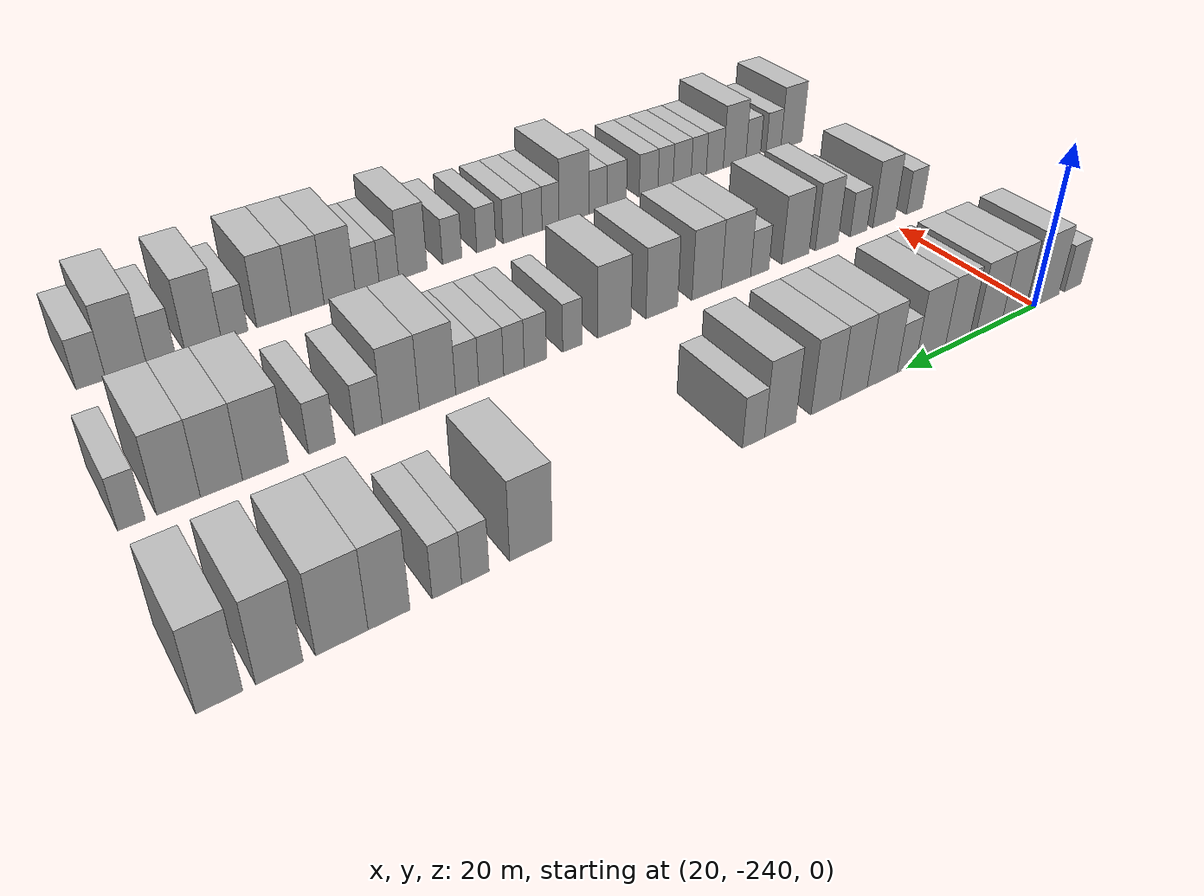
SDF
<sdf version="1.6">
 <world name="default">
  <model name="building_1">
   <static>1</static>
   <pose>25.0000 -246.5487 0 0.000000 0.000000 0.000000</pose>
   <link name="link">
    <pose>0 0 3.00 0 0 0</pose>
    <collision name="collision"><geometry><box><size>10.0000 2.9027 6.0000</size></box></geometry></collision>
    <visual name="visual">
     <cast_shadows>0</cast_shadows>
     <geometry><box><size>10.0000 2.9027 6.0000</size></box></geometry>
     <material>
      <script>
       <uri>model://HANNAS_wall/materials/scripts</uri>
       <uri>model://HANNAS_wall/materials/textures</uri>
       <name>vrc/HANNAS_wall</name>
      </script>
     </material>
    </visual>
   </link>
  </model>
  <model name="building_2">
   <static>1</static>
   <pose>25.0000 -242.2511 0 0.000000 0.000000 0.000000</pose>
   <link name="link">
    <pose>0 0 4.50 0 0 0</pose>
    <collision name="collision"><geometry><box><size>10.0000 3.6924 9.0000</size></box></geometry></collision>
    <visual name="visual">
     <cast_shadows>0</cast_shadows>
     <geometry><box><size>10.0000 3.6924 9.0000</size></box></geometry>
     <material>
      <script>
       <uri>model://HANNAS_wall/materials/scripts</uri>
       <uri>model://HANNAS_wall/materials/textures</uri>
       <name>vrc/HANNAS_wall</name>
      </script>
     </material>
    </visual>
   </link>
  </model>
  <model name="building_3">
   <static>1</static>
   <pose>25.0000 -236.4805 0 0.000000 0.000000 0.000000</pose>
   <link name="link">
    <pose>0 0 4.50 0 0 0</pose>
    <collision name="collision"><geometry><box><size>10.0000 3.8489 9.0000</size></box></geometry></collision>
    <visual name="visual">
     <cast_shadows>0</cast_shadows>
     <geometry><box><size>10.0000 3.8489 9.0000</size></box></geometry>
     <material>
      <script>
       <uri>model://HANNAS_wall/materials/scripts</uri>
       <uri>model://HANNAS_wall/materials/textures</uri>
       <name>vrc/HANNAS_wall</name>
      </script>
     </material>
    </visual>
   </link>
  </model>
  <model name="building_4">
   <static>1</static>
   <pose>25.0000 -232.4813 0 0.000000 0.000000 0.000000</pose>
   <link name="link">
    <pose>0 0 4.50 0 0 0</pose>
    <collision name="collision"><geometry><box><size>10.0000 4.1494 9.0000</size></box></geometry></collision>
    <visual name="visual">
     <cast_shadows>0</cast_shadows>
     <geometry><box><size>10.0000 4.1494 9.0000</size></box></geometry>
     <material>
      <script>
       <uri>model://HANNAS_wall/materials/scripts</uri>
       <uri>model://HANNAS_wall/materials/textures</uri>
       <name>vrc/HANNAS_wall</name>
      </script>
     </material>
    </visual>
   </link>
  </model>
  <model name="building_5">
   <static>1</static>
   <pose>25.0000 -227.5023 0 0.000000 0.000000 0.000000</pose>
   <link name="link">
    <pose>0 0 4.50 0 0 0</pose>
    <collision name="collision"><geometry><box><size>10.0000 3.8087 9.0000</size></box></geometry></collision>
    <visual name="visual">
     <cast_shadows>0</cast_shadows>
     <geometry><box><size>10.0000 3.8087 9.0000</size></box></geometry>
     <material>
      <script>
       <uri>model://HANNAS_wall/materials/scripts</uri>
       <uri>model://HANNAS_wall/materials/textures</uri>
       <name>vrc/HANNAS_wall</name>
      </script>
     </material>
    </visual>
   </link>
  </model>
  <model name="building_6">
   <static>1</static>
   <pose>25.0000 -223.4394 0 0.000000 0.000000 0.000000</pose>
   <link name="link">
    <pose>0 0 4.50 0 0 0</pose>
    <collision name="collision"><geometry><box><size>10.0000 4.3171 9.0000</size></box></geometry></collision>
    <visual name="visual">
     <cast_shadows>0</cast_shadows>
     <geometry><box><size>10.0000 4.3171 9.0000</size></box></geometry>
     <material>
      <script>
       <uri>model://HANNAS_wall/materials/scripts</uri>
       <uri>model://HANNAS_wall/materials/textures</uri>
       <name>vrc/HANNAS_wall</name>
      </script>
     </material>
    </visual>
   </link>
  </model>
  <model name="building_7">
   <static>1</static>
   <pose>25.0000 -219.9462 0 0.000000 0.000000 0.000000</pose>
   <link name="link">
    <pose>0 0 3.00 0 0 0</pose>
    <collision name="collision"><geometry><box><size>10.0000 2.6692 6.0000</size></box></geometry></collision>
    <visual name="visual">
     <cast_shadows>0</cast_shadows>
     <geometry><box><size>10.0000 2.6692 6.0000</size></box></geometry>
     <material>
      <script>
       <uri>model://HANNAS_wall/materials/scripts</uri>
       <uri>model://HANNAS_wall/materials/textures</uri>
       <name>vrc/HANNAS_wall</name>
      </script>
     </material>
    </visual>
   </link>
  </model>
  <model name="building_8">
   <static>1</static>
   <pose>25.0000 -216.4846 0 0.000000 0.000000 0.000000</pose>
   <link name="link">
    <pose>0 0 4.50 0 0 0</pose>
    <collision name="collision"><geometry><box><size>10.0000 4.2542 9.0000</size></box></geometry></collision>
    <visual name="visual">
     <cast_shadows>0</cast_shadows>
     <geometry><box><size>10.0000 4.2542 9.0000</size></box></geometry>
     <material>
      <script>
       <uri>model://HANNAS_wall/materials/scripts</uri>
       <uri>model://HANNAS_wall/materials/textures</uri>
       <name>vrc/HANNAS_wall</name>
      </script>
     </material>
    </visual>
   </link>
  </model>
  <model name="building_9">
   <static>1</static>
   <pose>25.0000 -212.4910 0 0.000000 0.000000 0.000000</pose>
   <link name="link">
    <pose>0 0 4.50 0 0 0</pose>
    <collision name="collision"><geometry><box><size>10.0000 3.7329 9.0000</size></box></geometry></collision>
    <visual name="visual">
     <cast_shadows>0</cast_shadows>
     <geometry><box><size>10.0000 3.7329 9.0000</size></box></geometry>
     <material>
      <script>
       <uri>model://HANNAS_wall/materials/scripts</uri>
       <uri>model://HANNAS_wall/materials/textures</uri>
       <name>vrc/HANNAS_wall</name>
      </script>
     </material>
    </visual>
   </link>
  </model>
  <model name="building_10">
   <static>1</static>
   <pose>25.0000 -208.6868 0 0.000000 0.000000 0.000000</pose>
   <link name="link">
    <pose>0 0 4.50 0 0 0</pose>
    <collision name="collision"><geometry><box><size>10.0000 3.8755 9.0000</size></box></geometry></collision>
    <visual name="visual">
     <cast_shadows>0</cast_shadows>
     <geometry><box><size>10.0000 3.8755 9.0000</size></box></geometry>
     <material>
      <script>
       <uri>model://HANNAS_wall/materials/scripts</uri>
       <uri>model://HANNAS_wall/materials/textures</uri>
       <name>vrc/HANNAS_wall</name>
      </script>
     </material>
    </visual>
   </link>
  </model>
  <model name="building_11">
   <static>1</static>
   <pose>25.0000 -202.7853 0 0.000000 0.000000 0.000000</pose>
   <link name="link">
    <pose>0 0 4.50 0 0 0</pose>
    <collision name="collision"><geometry><box><size>10.0000 3.9275 9.0000</size></box></geometry></collision>
    <visual name="visual">
     <cast_shadows>0</cast_shadows>
     <geometry><box><size>10.0000 3.9275 9.0000</size></box></geometry>
     <material>
      <script>
       <uri>model://HANNAS_wall/materials/scripts</uri>
       <uri>model://HANNAS_wall/materials/textures</uri>
       <name>vrc/HANNAS_wall</name>
      </script>
     </material>
    </visual>
   </link>
  </model>
  <model name="building_12">
   <static>1</static>
   <pose>25.0000 -199.4388 0 0.000000 0.000000 0.000000</pose>
   <link name="link">
    <pose>0 0 3.00 0 0 0</pose>
    <collision name="collision"><geometry><box><size>10.0000 2.7654 6.0000</size></box></geometry></collision>
    <visual name="visual">
     <cast_shadows>0</cast_shadows>
     <geometry><box><size>10.0000 2.7654 6.0000</size></box></geometry>
     <material>
      <script>
       <uri>model://HANNAS_wall/materials/scripts</uri>
       <uri>model://HANNAS_wall/materials/textures</uri>
       <name>vrc/HANNAS_wall</name>
      </script>
     </material>
    </visual>
   </link>
  </model>
  <model name="building_13">
   <static>1</static>
   <pose>25.0000 -174.6984 0 0.000000 0.000000 0.000000</pose>
   <link name="link">
    <pose>0 0 4.50 0 0 0</pose>
    <collision name="collision"><geometry><box><size>10.0000 4.2385 9.0000</size></box></geometry></collision>
    <visual name="visual">
     <cast_shadows>0</cast_shadows>
     <geometry><box><size>10.0000 4.2385 9.0000</size></box></geometry>
     <material>
      <script>
       <uri>model://HANNAS_wall/materials/scripts</uri>
       <uri>model://HANNAS_wall/materials/textures</uri>
       <name>vrc/HANNAS_wall</name>
      </script>
     </material>
    </visual>
   </link>
  </model>
  <model name="building_14">
   <static>1</static>
   <pose>25.0000 -169.2797 0 0.000000 0.000000 0.000000</pose>
   <link name="link">
    <pose>0 0 3.00 0 0 0</pose>
    <collision name="collision"><geometry><box><size>10.0000 2.5990 6.0000</size></box></geometry></collision>
    <visual name="visual">
     <cast_shadows>0</cast_shadows>
     <geometry><box><size>10.0000 2.5990 6.0000</size></box></geometry>
     <material>
      <script>
       <uri>model://HANNAS_wall/materials/scripts</uri>
       <uri>model://HANNAS_wall/materials/textures</uri>
       <name>vrc/HANNAS_wall</name>
      </script>
     </material>
    </visual>
   </link>
  </model>
  <model name="building_15">
   <static>1</static>
   <pose>25.0000 -166.6091 0 0.000000 0.000000 0.000000</pose>
   <link name="link">
    <pose>0 0 3.00 0 0 0</pose>
    <collision name="collision"><geometry><box><size>10.0000 2.7422 6.0000</size></box></geometry></collision>
    <visual name="visual">
     <cast_shadows>0</cast_shadows>
     <geometry><box><size>10.0000 2.7422 6.0000</size></box></geometry>
     <material>
      <script>
       <uri>model://HANNAS_wall/materials/scripts</uri>
       <uri>model://HANNAS_wall/materials/textures</uri>
       <name>vrc/HANNAS_wall</name>
      </script>
     </material>
    </visual>
   </link>
  </model>
  <model name="building_16">
   <static>1</static>
   <pose>25.0000 -161.3893 0 0.000000 0.000000 0.000000</pose>
   <link name="link">
    <pose>0 0 4.50 0 0 0</pose>
    <collision name="collision"><geometry><box><size>10.0000 3.6974 9.0000</size></box></geometry></collision>
    <visual name="visual">
     <cast_shadows>0</cast_shadows>
     <geometry><box><size>10.0000 3.6974 9.0000</size></box></geometry>
     <material>
      <script>
       <uri>model://HANNAS_wall/materials/scripts</uri>
       <uri>model://HANNAS_wall/materials/textures</uri>
       <name>vrc/HANNAS_wall</name>
      </script>
     </material>
    </visual>
   </link>
  </model>
  <model name="building_17">
   <static>1</static>
   <pose>25.0000 -157.3042 0 0.000000 0.000000 0.000000</pose>
   <link name="link">
    <pose>0 0 4.50 0 0 0</pose>
    <collision name="collision"><geometry><box><size>10.0000 4.4729 9.0000</size></box></geometry></collision>
    <visual name="visual">
     <cast_shadows>0</cast_shadows>
     <geometry><box><size>10.0000 4.4729 9.0000</size></box></geometry>
     <material>
      <script>
       <uri>model://HANNAS_wall/materials/scripts</uri>
       <uri>model://HANNAS_wall/materials/textures</uri>
       <name>vrc/HANNAS_wall</name>
      </script>
     </material>
    </visual>
   </link>
  </model>
  <model name="building_18">
   <static>1</static>
   <pose>25.0000 -152.1497 0 0.000000 0.000000 0.000000</pose>
   <link name="link">
    <pose>0 0 4.50 0 0 0</pose>
    <collision name="collision"><geometry><box><size>10.0000 3.8361 9.0000</size></box></geometry></collision>
    <visual name="visual">
     <cast_shadows>0</cast_shadows>
     <geometry><box><size>10.0000 3.8361 9.0000</size></box></geometry>
     <material>
      <script>
       <uri>model://HANNAS_wall/materials/scripts</uri>
       <uri>model://HANNAS_wall/materials/textures</uri>
       <name>vrc/HANNAS_wall</name>
      </script>
     </material>
    </visual>
   </link>
  </model>
  <model name="building_19">
   <static>1</static>
   <pose>25.0000 -147.4232 0 0.000000 0.000000 0.000000</pose>
   <link name="link">
    <pose>0 0 4.50 0 0 0</pose>
    <collision name="collision"><geometry><box><size>10.0000 3.6168 9.0000</size></box></geometry></collision>
    <visual name="visual">
     <cast_shadows>0</cast_shadows>
     <geometry><box><size>10.0000 3.6168 9.0000</size></box></geometry>
     <material>
      <script>
       <uri>model://HANNAS_wall/materials/scripts</uri>
       <uri>model://HANNAS_wall/materials/textures</uri>
       <name>vrc/HANNAS_wall</name>
      </script>
     </material>
    </visual>
   </link>
  </model>
  <model name="building_120">
   <static>1</static>
   <pose>47.0000 -244.5877 0 0.000000 0.000000 0.000000</pose>
   <link name="link">
    <pose>0 0 3.00 0 0 0</pose>
    <collision name="collision"><geometry><box><size>10.0000 2.8246 6.0000</size></box></geometry></collision>
    <visual name="visual">
     <cast_shadows>0</cast_shadows>
     <geometry><box><size>10.0000 2.8246 6.0000</size></box></geometry>
     <material>
      <script>
       <uri>model://HANNAS_wall/materials/scripts</uri>
       <uri>model://HANNAS_wall/materials/textures</uri>
       <name>vrc/HANNAS_wall</name>
      </script>
     </material>
    </visual>
   </link>
  </model>
  <model name="building_121">
   <static>1</static>
   <pose>47.0000 -239.2739 0 0.000000 0.000000 0.000000</pose>
   <link name="link">
    <pose>0 0 4.50 0 0 0</pose>
    <collision name="collision"><geometry><box><size>10.0000 3.8030 9.0000</size></box></geometry></collision>
    <visual name="visual">
     <cast_shadows>0</cast_shadows>
     <geometry><box><size>10.0000 3.8030 9.0000</size></box></geometry>
     <material>
      <script>
       <uri>model://HANNAS_wall/materials/scripts</uri>
       <uri>model://HANNAS_wall/materials/textures</uri>
       <name>vrc/HANNAS_wall</name>
      </script>
     </material>
    </visual>
   </link>
  </model>
  <model name="building_122">
   <static>1</static>
   <pose>47.0000 -234.9755 0 0.000000 0.000000 0.000000</pose>
   <link name="link">
    <pose>0 0 3.00 0 0 0</pose>
    <collision name="collision"><geometry><box><size>10.0000 2.7939 6.0000</size></box></geometry></collision>
    <visual name="visual">
     <cast_shadows>0</cast_shadows>
     <geometry><box><size>10.0000 2.7939 6.0000</size></box></geometry>
     <material>
      <script>
       <uri>model://HANNAS_wall/materials/scripts</uri>
       <uri>model://HANNAS_wall/materials/textures</uri>
       <name>vrc/HANNAS_wall</name>
      </script>
     </material>
    </visual>
   </link>
  </model>
  <model name="building_123">
   <static>1</static>
   <pose>47.0000 -229.7334 0 0.000000 0.000000 0.000000</pose>
   <link name="link">
    <pose>0 0 4.50 0 0 0</pose>
    <collision name="collision"><geometry><box><size>10.0000 3.6903 9.0000</size></box></geometry></collision>
    <visual name="visual">
     <cast_shadows>0</cast_shadows>
     <geometry><box><size>10.0000 3.6903 9.0000</size></box></geometry>
     <material>
      <script>
       <uri>model://HANNAS_wall/materials/scripts</uri>
       <uri>model://HANNAS_wall/materials/textures</uri>
       <name>vrc/HANNAS_wall</name>
      </script>
     </material>
    </visual>
   </link>
  </model>
  <model name="building_124">
   <static>1</static>
   <pose>47.0000 -224.7659 0 0.000000 0.000000 0.000000</pose>
   <link name="link">
    <pose>0 0 4.50 0 0 0</pose>
    <collision name="collision"><geometry><box><size>10.0000 4.2448 9.0000</size></box></geometry></collision>
    <visual name="visual">
     <cast_shadows>0</cast_shadows>
     <geometry><box><size>10.0000 4.2448 9.0000</size></box></geometry>
     <material>
      <script>
       <uri>model://HANNAS_wall/materials/scripts</uri>
       <uri>model://HANNAS_wall/materials/textures</uri>
       <name>vrc/HANNAS_wall</name>
      </script>
     </material>
    </visual>
   </link>
  </model>
  <model name="building_125">
   <static>1</static>
   <pose>47.0000 -219.2715 0 0.000000 0.000000 0.000000</pose>
   <link name="link">
    <pose>0 0 3.00 0 0 0</pose>
    <collision name="collision"><geometry><box><size>10.0000 2.7438 6.0000</size></box></geometry></collision>
    <visual name="visual">
     <cast_shadows>0</cast_shadows>
     <geometry><box><size>10.0000 2.7438 6.0000</size></box></geometry>
     <material>
      <script>
       <uri>model://HANNAS_wall/materials/scripts</uri>
       <uri>model://HANNAS_wall/materials/textures</uri>
       <name>vrc/HANNAS_wall</name>
      </script>
     </material>
    </visual>
   </link>
  </model>
  <model name="building_126">
   <static>1</static>
   <pose>47.0000 -215.7509 0 0.000000 0.000000 0.000000</pose>
   <link name="link">
    <pose>0 0 4.50 0 0 0</pose>
    <collision name="collision"><geometry><box><size>10.0000 4.2975 9.0000</size></box></geometry></collision>
    <visual name="visual">
     <cast_shadows>0</cast_shadows>
     <geometry><box><size>10.0000 4.2975 9.0000</size></box></geometry>
     <material>
      <script>
       <uri>model://HANNAS_wall/materials/scripts</uri>
       <uri>model://HANNAS_wall/materials/textures</uri>
       <name>vrc/HANNAS_wall</name>
      </script>
     </material>
    </visual>
   </link>
  </model>
  <model name="building_127">
   <static>1</static>
   <pose>47.0000 -211.4971 0 0.000000 0.000000 0.000000</pose>
   <link name="link">
    <pose>0 0 4.50 0 0 0</pose>
    <collision name="collision"><geometry><box><size>10.0000 4.2102 9.0000</size></box></geometry></collision>
    <visual name="visual">
     <cast_shadows>0</cast_shadows>
     <geometry><box><size>10.0000 4.2102 9.0000</size></box></geometry>
     <material>
      <script>
       <uri>model://HANNAS_wall/materials/scripts</uri>
       <uri>model://HANNAS_wall/materials/textures</uri>
       <name>vrc/HANNAS_wall</name>
      </script>
     </material>
    </visual>
   </link>
  </model>
  <model name="building_128">
   <static>1</static>
   <pose>47.0000 -205.2185 0 0.000000 0.000000 0.000000</pose>
   <link name="link">
    <pose>0 0 4.50 0 0 0</pose>
    <collision name="collision"><geometry><box><size>10.0000 4.3470 9.0000</size></box></geometry></collision>
    <visual name="visual">
     <cast_shadows>0</cast_shadows>
     <geometry><box><size>10.0000 4.3470 9.0000</size></box></geometry>
     <material>
      <script>
       <uri>model://HANNAS_wall/materials/scripts</uri>
       <uri>model://HANNAS_wall/materials/textures</uri>
       <name>vrc/HANNAS_wall</name>
      </script>
     </material>
    </visual>
   </link>
  </model>
  <model name="building_129">
   <static>1</static>
   <pose>47.0000 -198.8660 0 0.000000 0.000000 0.000000</pose>
   <link name="link">
    <pose>0 0 4.50 0 0 0</pose>
    <collision name="collision"><geometry><box><size>10.0000 4.3579 9.0000</size></box></geometry></collision>
    <visual name="visual">
     <cast_shadows>0</cast_shadows>
     <geometry><box><size>10.0000 4.3579 9.0000</size></box></geometry>
     <material>
      <script>
       <uri>model://HANNAS_wall/materials/scripts</uri>
       <uri>model://HANNAS_wall/materials/textures</uri>
       <name>vrc/HANNAS_wall</name>
      </script>
     </material>
    </visual>
   </link>
  </model>
  <model name="building_130">
   <static>1</static>
   <pose>47.0000 -193.4842 0 0.000000 0.000000 0.000000</pose>
   <link name="link">
    <pose>0 0 3.00 0 0 0</pose>
    <collision name="collision"><geometry><box><size>10.0000 2.4057 6.0000</size></box></geometry></collision>
    <visual name="visual">
     <cast_shadows>0</cast_shadows>
     <geometry><box><size>10.0000 2.4057 6.0000</size></box></geometry>
     <material>
      <script>
       <uri>model://HANNAS_wall/materials/scripts</uri>
       <uri>model://HANNAS_wall/materials/textures</uri>
       <name>vrc/HANNAS_wall</name>
      </script>
     </material>
    </visual>
   </link>
  </model>
  <model name="building_131">
   <static>1</static>
   <pose>47.0000 -188.9289 0 0.000000 0.000000 0.000000</pose>
   <link name="link">
    <pose>0 0 3.00 0 0 0</pose>
    <collision name="collision"><geometry><box><size>10.0000 2.7050 6.0000</size></box></geometry></collision>
    <visual name="visual">
     <cast_shadows>0</cast_shadows>
     <geometry><box><size>10.0000 2.7050 6.0000</size></box></geometry>
     <material>
      <script>
       <uri>model://HANNAS_wall/materials/scripts</uri>
       <uri>model://HANNAS_wall/materials/textures</uri>
       <name>vrc/HANNAS_wall</name>
      </script>
     </material>
    </visual>
   </link>
  </model>
  <model name="building_132">
   <static>1</static>
   <pose>47.0000 -186.3565 0 0.000000 0.000000 0.000000</pose>
   <link name="link">
    <pose>0 0 3.00 0 0 0</pose>
    <collision name="collision"><geometry><box><size>10.0000 2.4398 6.0000</size></box></geometry></collision>
    <visual name="visual">
     <cast_shadows>0</cast_shadows>
     <geometry><box><size>10.0000 2.4398 6.0000</size></box></geometry>
     <material>
      <script>
       <uri>model://HANNAS_wall/materials/scripts</uri>
       <uri>model://HANNAS_wall/materials/textures</uri>
       <name>vrc/HANNAS_wall</name>
      </script>
     </material>
    </visual>
   </link>
  </model>
  <model name="building_133">
   <static>1</static>
   <pose>47.0000 -183.6810 0 0.000000 0.000000 0.000000</pose>
   <link name="link">
    <pose>0 0 3.00 0 0 0</pose>
    <collision name="collision"><geometry><box><size>10.0000 2.9111 6.0000</size></box></geometry></collision>
    <visual name="visual">
     <cast_shadows>0</cast_shadows>
     <geometry><box><size>10.0000 2.9111 6.0000</size></box></geometry>
     <material>
      <script>
       <uri>model://HANNAS_wall/materials/scripts</uri>
       <uri>model://HANNAS_wall/materials/textures</uri>
       <name>vrc/HANNAS_wall</name>
      </script>
     </material>
    </visual>
   </link>
  </model>
  <model name="building_134">
   <static>1</static>
   <pose>47.0000 -180.9071 0 0.000000 0.000000 0.000000</pose>
   <link name="link">
    <pose>0 0 3.00 0 0 0</pose>
    <collision name="collision"><geometry><box><size>10.0000 2.6367 6.0000</size></box></geometry></collision>
    <visual name="visual">
     <cast_shadows>0</cast_shadows>
     <geometry><box><size>10.0000 2.6367 6.0000</size></box></geometry>
     <material>
      <script>
       <uri>model://HANNAS_wall/materials/scripts</uri>
       <uri>model://HANNAS_wall/materials/textures</uri>
       <name>vrc/HANNAS_wall</name>
      </script>
     </material>
    </visual>
   </link>
  </model>
  <model name="building_135">
   <static>1</static>
   <pose>47.0000 -177.5695 0 0.000000 0.000000 0.000000</pose>
   <link name="link">
    <pose>0 0 4.50 0 0 0</pose>
    <collision name="collision"><geometry><box><size>10.0000 4.0385 9.0000</size></box></geometry></collision>
    <visual name="visual">
     <cast_shadows>0</cast_shadows>
     <geometry><box><size>10.0000 4.0385 9.0000</size></box></geometry>
     <material>
      <script>
       <uri>model://HANNAS_wall/materials/scripts</uri>
       <uri>model://HANNAS_wall/materials/textures</uri>
       <name>vrc/HANNAS_wall</name>
      </script>
     </material>
    </visual>
   </link>
  </model>
  <model name="building_136">
   <static>1</static>
   <pose>47.0000 -173.5507 0 0.000000 0.000000 0.000000</pose>
   <link name="link">
    <pose>0 0 4.50 0 0 0</pose>
    <collision name="collision"><geometry><box><size>10.0000 3.9991 9.0000</size></box></geometry></collision>
    <visual name="visual">
     <cast_shadows>0</cast_shadows>
     <geometry><box><size>10.0000 3.9991 9.0000</size></box></geometry>
     <material>
      <script>
       <uri>model://HANNAS_wall/materials/scripts</uri>
       <uri>model://HANNAS_wall/materials/textures</uri>
       <name>vrc/HANNAS_wall</name>
      </script>
     </material>
    </visual>
   </link>
  </model>
  <model name="building_137">
   <static>1</static>
   <pose>47.0000 -170.1081 0 0.000000 0.000000 0.000000</pose>
   <link name="link">
    <pose>0 0 3.00 0 0 0</pose>
    <collision name="collision"><geometry><box><size>10.0000 2.8861 6.0000</size></box></geometry></collision>
    <visual name="visual">
     <cast_shadows>0</cast_shadows>
     <geometry><box><size>10.0000 2.8861 6.0000</size></box></geometry>
     <material>
      <script>
       <uri>model://HANNAS_wall/materials/scripts</uri>
       <uri>model://HANNAS_wall/materials/textures</uri>
       <name>vrc/HANNAS_wall</name>
      </script>
     </material>
    </visual>
   </link>
  </model>
  <model name="building_138">
   <static>1</static>
   <pose>47.0000 -165.3103 0 0.000000 0.000000 0.000000</pose>
   <link name="link">
    <pose>0 0 3.00 0 0 0</pose>
    <collision name="collision"><geometry><box><size>10.0000 2.7096 6.0000</size></box></geometry></collision>
    <visual name="visual">
     <cast_shadows>0</cast_shadows>
     <geometry><box><size>10.0000 2.7096 6.0000</size></box></geometry>
     <material>
      <script>
       <uri>model://HANNAS_wall/materials/scripts</uri>
       <uri>model://HANNAS_wall/materials/textures</uri>
       <name>vrc/HANNAS_wall</name>
      </script>
     </material>
    </visual>
   </link>
  </model>
  <model name="building_139">
   <static>1</static>
   <pose>47.0000 -159.7532 0 0.000000 0.000000 0.000000</pose>
   <link name="link">
    <pose>0 0 4.50 0 0 0</pose>
    <collision name="collision"><geometry><box><size>10.0000 4.4046 9.0000</size></box></geometry></collision>
    <visual name="visual">
     <cast_shadows>0</cast_shadows>
     <geometry><box><size>10.0000 4.4046 9.0000</size></box></geometry>
     <material>
      <script>
       <uri>model://HANNAS_wall/materials/scripts</uri>
       <uri>model://HANNAS_wall/materials/textures</uri>
       <name>vrc/HANNAS_wall</name>
      </script>
     </material>
    </visual>
   </link>
  </model>
  <model name="building_140">
   <static>1</static>
   <pose>47.0000 -155.5883 0 0.000000 0.000000 0.000000</pose>
   <link name="link">
    <pose>0 0 4.50 0 0 0</pose>
    <collision name="collision"><geometry><box><size>10.0000 3.9252 9.0000</size></box></geometry></collision>
    <visual name="visual">
     <cast_shadows>0</cast_shadows>
     <geometry><box><size>10.0000 3.9252 9.0000</size></box></geometry>
     <material>
      <script>
       <uri>model://HANNAS_wall/materials/scripts</uri>
       <uri>model://HANNAS_wall/materials/textures</uri>
       <name>vrc/HANNAS_wall</name>
      </script>
     </material>
    </visual>
   </link>
  </model>
  <model name="building_141">
   <static>1</static>
   <pose>47.0000 -151.6526 0 0.000000 0.000000 0.000000</pose>
   <link name="link">
    <pose>0 0 4.50 0 0 0</pose>
    <collision name="collision"><geometry><box><size>10.0000 3.9463 9.0000</size></box></geometry></collision>
    <visual name="visual">
     <cast_shadows>0</cast_shadows>
     <geometry><box><size>10.0000 3.9463 9.0000</size></box></geometry>
     <material>
      <script>
       <uri>model://HANNAS_wall/materials/scripts</uri>
       <uri>model://HANNAS_wall/materials/textures</uri>
       <name>vrc/HANNAS_wall</name>
      </script>
     </material>
    </visual>
   </link>
  </model>
  <model name="building_142">
   <static>1</static>
   <pose>47.0000 -147.4780 0 0.000000 0.000000 0.000000</pose>
   <link name="link">
    <pose>0 0 3.00 0 0 0</pose>
    <collision name="collision"><geometry><box><size>10.0000 2.4029 6.0000</size></box></geometry></collision>
    <visual name="visual">
     <cast_shadows>0</cast_shadows>
     <geometry><box><size>10.0000 2.4029 6.0000</size></box></geometry>
     <material>
      <script>
       <uri>model://HANNAS_wall/materials/scripts</uri>
       <uri>model://HANNAS_wall/materials/textures</uri>
       <name>vrc/HANNAS_wall</name>
      </script>
     </material>
    </visual>
   </link>
  </model>
  <model name="building_234">
   <static>1</static>
   <pose>69.0000 -244.0518 0 0.000000 0.000000 0.000000</pose>
   <link name="link">
    <pose>0 0 4.50 0 0 0</pose>
    <collision name="collision"><geometry><box><size>10.0000 3.8964 9.0000</size></box></geometry></collision>
    <visual name="visual">
     <cast_shadows>0</cast_shadows>
     <geometry><box><size>10.0000 3.8964 9.0000</size></box></geometry>
     <material>
      <script>
       <uri>model://HANNAS_wall/materials/scripts</uri>
       <uri>model://HANNAS_wall/materials/textures</uri>
       <name>vrc/HANNAS_wall</name>
      </script>
     </material>
    </visual>
   </link>
  </model>
  <model name="building_235">
   <static>1</static>
   <pose>69.0000 -240.7823 0 0.000000 0.000000 0.000000</pose>
   <link name="link">
    <pose>0 0 3.00 0 0 0</pose>
    <collision name="collision"><geometry><box><size>10.0000 2.6427 6.0000</size></box></geometry></collision>
    <visual name="visual">
     <cast_shadows>0</cast_shadows>
     <geometry><box><size>10.0000 2.6427 6.0000</size></box></geometry>
     <material>
      <script>
       <uri>model://HANNAS_wall/materials/scripts</uri>
       <uri>model://HANNAS_wall/materials/textures</uri>
       <name>vrc/HANNAS_wall</name>
      </script>
     </material>
    </visual>
   </link>
  </model>
  <model name="building_236">
   <static>1</static>
   <pose>69.0000 -237.1719 0 0.000000 0.000000 0.000000</pose>
   <link name="link">
    <pose>0 0 3.00 0 0 0</pose>
    <collision name="collision"><geometry><box><size>10.0000 2.5781 6.0000</size></box></geometry></collision>
    <visual name="visual">
     <cast_shadows>0</cast_shadows>
     <geometry><box><size>10.0000 2.5781 6.0000</size></box></geometry>
     <material>
      <script>
       <uri>model://HANNAS_wall/materials/scripts</uri>
       <uri>model://HANNAS_wall/materials/textures</uri>
       <name>vrc/HANNAS_wall</name>
      </script>
     </material>
    </visual>
   </link>
  </model>
  <model name="building_237">
   <static>1</static>
   <pose>69.0000 -233.9462 0 0.000000 0.000000 0.000000</pose>
   <link name="link">
    <pose>0 0 4.50 0 0 0</pose>
    <collision name="collision"><geometry><box><size>10.0000 3.8733 9.0000</size></box></geometry></collision>
    <visual name="visual">
     <cast_shadows>0</cast_shadows>
     <geometry><box><size>10.0000 3.8733 9.0000</size></box></geometry>
     <material>
      <script>
       <uri>model://HANNAS_wall/materials/scripts</uri>
       <uri>model://HANNAS_wall/materials/textures</uri>
       <name>vrc/HANNAS_wall</name>
      </script>
     </material>
    </visual>
   </link>
  </model>
  <model name="building_238">
   <static>1</static>
   <pose>69.0000 -230.5720 0 0.000000 0.000000 0.000000</pose>
   <link name="link">
    <pose>0 0 3.00 0 0 0</pose>
    <collision name="collision"><geometry><box><size>10.0000 2.8752 6.0000</size></box></geometry></collision>
    <visual name="visual">
     <cast_shadows>0</cast_shadows>
     <geometry><box><size>10.0000 2.8752 6.0000</size></box></geometry>
     <material>
      <script>
       <uri>model://HANNAS_wall/materials/scripts</uri>
       <uri>model://HANNAS_wall/materials/textures</uri>
       <name>vrc/HANNAS_wall</name>
      </script>
     </material>
    </visual>
   </link>
  </model>
  <model name="building_239">
   <static>1</static>
   <pose>69.0000 -227.8696 0 0.000000 0.000000 0.000000</pose>
   <link name="link">
    <pose>0 0 3.00 0 0 0</pose>
    <collision name="collision"><geometry><box><size>10.0000 2.5295 6.0000</size></box></geometry></collision>
    <visual name="visual">
     <cast_shadows>0</cast_shadows>
     <geometry><box><size>10.0000 2.5295 6.0000</size></box></geometry>
     <material>
      <script>
       <uri>model://HANNAS_wall/materials/scripts</uri>
       <uri>model://HANNAS_wall/materials/textures</uri>
       <name>vrc/HANNAS_wall</name>
      </script>
     </material>
    </visual>
   </link>
  </model>
  <model name="building_240">
   <static>1</static>
   <pose>69.0000 -225.1320 0 0.000000 0.000000 0.000000</pose>
   <link name="link">
    <pose>0 0 3.00 0 0 0</pose>
    <collision name="collision"><geometry><box><size>10.0000 2.9457 6.0000</size></box></geometry></collision>
    <visual name="visual">
     <cast_shadows>0</cast_shadows>
     <geometry><box><size>10.0000 2.9457 6.0000</size></box></geometry>
     <material>
      <script>
       <uri>model://HANNAS_wall/materials/scripts</uri>
       <uri>model://HANNAS_wall/materials/textures</uri>
       <name>vrc/HANNAS_wall</name>
      </script>
     </material>
    </visual>
   </link>
  </model>
  <model name="building_241">
   <static>1</static>
   <pose>69.0000 -222.4362 0 0.000000 0.000000 0.000000</pose>
   <link name="link">
    <pose>0 0 3.00 0 0 0</pose>
    <collision name="collision"><geometry><box><size>10.0000 2.4460 6.0000</size></box></geometry></collision>
    <visual name="visual">
     <cast_shadows>0</cast_shadows>
     <geometry><box><size>10.0000 2.4460 6.0000</size></box></geometry>
     <material>
      <script>
       <uri>model://HANNAS_wall/materials/scripts</uri>
       <uri>model://HANNAS_wall/materials/textures</uri>
       <name>vrc/HANNAS_wall</name>
      </script>
     </material>
    </visual>
   </link>
  </model>
  <model name="building_242">
   <static>1</static>
   <pose>69.0000 -219.7306 0 0.000000 0.000000 0.000000</pose>
   <link name="link">
    <pose>0 0 3.00 0 0 0</pose>
    <collision name="collision"><geometry><box><size>10.0000 2.9651 6.0000</size></box></geometry></collision>
    <visual name="visual">
     <cast_shadows>0</cast_shadows>
     <geometry><box><size>10.0000 2.9651 6.0000</size></box></geometry>
     <material>
      <script>
       <uri>model://HANNAS_wall/materials/scripts</uri>
       <uri>model://HANNAS_wall/materials/textures</uri>
       <name>vrc/HANNAS_wall</name>
      </script>
     </material>
    </visual>
   </link>
  </model>
  <model name="building_243">
   <static>1</static>
   <pose>69.0000 -214.7595 0 0.000000 0.000000 0.000000</pose>
   <link name="link">
    <pose>0 0 3.00 0 0 0</pose>
    <collision name="collision"><geometry><box><size>10.0000 2.9771 6.0000</size></box></geometry></collision>
    <visual name="visual">
     <cast_shadows>0</cast_shadows>
     <geometry><box><size>10.0000 2.9771 6.0000</size></box></geometry>
     <material>
      <script>
       <uri>model://HANNAS_wall/materials/scripts</uri>
       <uri>model://HANNAS_wall/materials/textures</uri>
       <name>vrc/HANNAS_wall</name>
      </script>
     </material>
    </visual>
   </link>
  </model>
  <model name="building_244">
   <static>1</static>
   <pose>69.0000 -211.9049 0 0.000000 0.000000 0.000000</pose>
   <link name="link">
    <pose>0 0 3.00 0 0 0</pose>
    <collision name="collision"><geometry><box><size>10.0000 2.7321 6.0000</size></box></geometry></collision>
    <visual name="visual">
     <cast_shadows>0</cast_shadows>
     <geometry><box><size>10.0000 2.7321 6.0000</size></box></geometry>
     <material>
      <script>
       <uri>model://HANNAS_wall/materials/scripts</uri>
       <uri>model://HANNAS_wall/materials/textures</uri>
       <name>vrc/HANNAS_wall</name>
      </script>
     </material>
    </visual>
   </link>
  </model>
  <model name="building_245">
   <static>1</static>
   <pose>69.0000 -208.3323 0 0.000000 0.000000 0.000000</pose>
   <link name="link">
    <pose>0 0 4.50 0 0 0</pose>
    <collision name="collision"><geometry><box><size>10.0000 4.4131 9.0000</size></box></geometry></collision>
    <visual name="visual">
     <cast_shadows>0</cast_shadows>
     <geometry><box><size>10.0000 4.4131 9.0000</size></box></geometry>
     <material>
      <script>
       <uri>model://HANNAS_wall/materials/scripts</uri>
       <uri>model://HANNAS_wall/materials/textures</uri>
       <name>vrc/HANNAS_wall</name>
      </script>
     </material>
    </visual>
   </link>
  </model>
  <model name="building_246">
   <static>1</static>
   <pose>69.0000 -204.9012 0 0.000000 0.000000 0.000000</pose>
   <link name="link">
    <pose>0 0 3.00 0 0 0</pose>
    <collision name="collision"><geometry><box><size>10.0000 2.4491 6.0000</size></box></geometry></collision>
    <visual name="visual">
     <cast_shadows>0</cast_shadows>
     <geometry><box><size>10.0000 2.4491 6.0000</size></box></geometry>
     <material>
      <script>
       <uri>model://HANNAS_wall/materials/scripts</uri>
       <uri>model://HANNAS_wall/materials/textures</uri>
       <name>vrc/HANNAS_wall</name>
      </script>
     </material>
    </visual>
   </link>
  </model>
  <model name="building_247">
   <static>1</static>
   <pose>69.0000 -202.3033 0 0.000000 0.000000 0.000000</pose>
   <link name="link">
    <pose>0 0 3.00 0 0 0</pose>
    <collision name="collision"><geometry><box><size>10.0000 2.7466 6.0000</size></box></geometry></collision>
    <visual name="visual">
     <cast_shadows>0</cast_shadows>
     <geometry><box><size>10.0000 2.7466 6.0000</size></box></geometry>
     <material>
      <script>
       <uri>model://HANNAS_wall/materials/scripts</uri>
       <uri>model://HANNAS_wall/materials/textures</uri>
       <name>vrc/HANNAS_wall</name>
      </script>
     </material>
    </visual>
   </link>
  </model>
  <model name="building_248">
   <static>1</static>
   <pose>69.0000 -199.5465 0 0.000000 0.000000 0.000000</pose>
   <link name="link">
    <pose>0 0 3.00 0 0 0</pose>
    <collision name="collision"><geometry><box><size>10.0000 2.7670 6.0000</size></box></geometry></collision>
    <visual name="visual">
     <cast_shadows>0</cast_shadows>
     <geometry><box><size>10.0000 2.7670 6.0000</size></box></geometry>
     <material>
      <script>
       <uri>model://HANNAS_wall/materials/scripts</uri>
       <uri>model://HANNAS_wall/materials/textures</uri>
       <name>vrc/HANNAS_wall</name>
      </script>
     </material>
    </visual>
   </link>
  </model>
  <model name="building_249">
   <static>1</static>
   <pose>69.0000 -195.8694 0 0.000000 0.000000 0.000000</pose>
   <link name="link">
    <pose>0 0 3.00 0 0 0</pose>
    <collision name="collision"><geometry><box><size>10.0000 2.5871 6.0000</size></box></geometry></collision>
    <visual name="visual">
     <cast_shadows>0</cast_shadows>
     <geometry><box><size>10.0000 2.5871 6.0000</size></box></geometry>
     <material>
      <script>
       <uri>model://HANNAS_wall/materials/scripts</uri>
       <uri>model://HANNAS_wall/materials/textures</uri>
       <name>vrc/HANNAS_wall</name>
      </script>
     </material>
    </visual>
   </link>
  </model>
  <model name="building_250">
   <static>1</static>
   <pose>69.0000 -191.2952 0 0.000000 0.000000 0.000000</pose>
   <link name="link">
    <pose>0 0 3.00 0 0 0</pose>
    <collision name="collision"><geometry><box><size>10.0000 2.5615 6.0000</size></box></geometry></collision>
    <visual name="visual">
     <cast_shadows>0</cast_shadows>
     <geometry><box><size>10.0000 2.5615 6.0000</size></box></geometry>
     <material>
      <script>
       <uri>model://HANNAS_wall/materials/scripts</uri>
       <uri>model://HANNAS_wall/materials/textures</uri>
       <name>vrc/HANNAS_wall</name>
      </script>
     </material>
    </visual>
   </link>
  </model>
  <model name="building_251">
   <static>1</static>
   <pose>69.0000 -186.1987 0 0.000000 0.000000 0.000000</pose>
   <link name="link">
    <pose>0 0 4.50 0 0 0</pose>
    <collision name="collision"><geometry><box><size>10.0000 3.6315 9.0000</size></box></geometry></collision>
    <visual name="visual">
     <cast_shadows>0</cast_shadows>
     <geometry><box><size>10.0000 3.6315 9.0000</size></box></geometry>
     <material>
      <script>
       <uri>model://HANNAS_wall/materials/scripts</uri>
       <uri>model://HANNAS_wall/materials/textures</uri>
       <name>vrc/HANNAS_wall</name>
      </script>
     </material>
    </visual>
   </link>
  </model>
  <model name="building_252">
   <static>1</static>
   <pose>69.0000 -183.1668 0 0.000000 0.000000 0.000000</pose>
   <link name="link">
    <pose>0 0 3.00 0 0 0</pose>
    <collision name="collision"><geometry><box><size>10.0000 2.4323 6.0000</size></box></geometry></collision>
    <visual name="visual">
     <cast_shadows>0</cast_shadows>
     <geometry><box><size>10.0000 2.4323 6.0000</size></box></geometry>
     <material>
      <script>
       <uri>model://HANNAS_wall/materials/scripts</uri>
       <uri>model://HANNAS_wall/materials/textures</uri>
       <name>vrc/HANNAS_wall</name>
      </script>
     </material>
    </visual>
   </link>
  </model>
  <model name="building_253">
   <static>1</static>
   <pose>69.0000 -180.4763 0 0.000000 0.000000 0.000000</pose>
   <link name="link">
    <pose>0 0 3.00 0 0 0</pose>
    <collision name="collision"><geometry><box><size>10.0000 2.9487 6.0000</size></box></geometry></collision>
    <visual name="visual">
     <cast_shadows>0</cast_shadows>
     <geometry><box><size>10.0000 2.9487 6.0000</size></box></geometry>
     <material>
      <script>
       <uri>model://HANNAS_wall/materials/scripts</uri>
       <uri>model://HANNAS_wall/materials/textures</uri>
       <name>vrc/HANNAS_wall</name>
      </script>
     </material>
    </visual>
   </link>
  </model>
  <model name="building_254">
   <static>1</static>
   <pose>69.0000 -177.1203 0 0.000000 0.000000 0.000000</pose>
   <link name="link">
    <pose>0 0 4.50 0 0 0</pose>
    <collision name="collision"><geometry><box><size>10.0000 3.7633 9.0000</size></box></geometry></collision>
    <visual name="visual">
     <cast_shadows>0</cast_shadows>
     <geometry><box><size>10.0000 3.7633 9.0000</size></box></geometry>
     <material>
      <script>
       <uri>model://HANNAS_wall/materials/scripts</uri>
       <uri>model://HANNAS_wall/materials/textures</uri>
       <name>vrc/HANNAS_wall</name>
      </script>
     </material>
    </visual>
   </link>
  </model>
  <model name="building_255">
   <static>1</static>
   <pose>69.0000 -173.3105 0 0.000000 0.000000 0.000000</pose>
   <link name="link">
    <pose>0 0 4.50 0 0 0</pose>
    <collision name="collision"><geometry><box><size>10.0000 3.8563 9.0000</size></box></geometry></collision>
    <visual name="visual">
     <cast_shadows>0</cast_shadows>
     <geometry><box><size>10.0000 3.8563 9.0000</size></box></geometry>
     <material>
      <script>
       <uri>model://HANNAS_wall/materials/scripts</uri>
       <uri>model://HANNAS_wall/materials/textures</uri>
       <name>vrc/HANNAS_wall</name>
      </script>
     </material>
    </visual>
   </link>
  </model>
  <model name="building_256">
   <static>1</static>
   <pose>69.0000 -169.4219 0 0.000000 0.000000 0.000000</pose>
   <link name="link">
    <pose>0 0 4.50 0 0 0</pose>
    <collision name="collision"><geometry><box><size>10.0000 3.9208 9.0000</size></box></geometry></collision>
    <visual name="visual">
     <cast_shadows>0</cast_shadows>
     <geometry><box><size>10.0000 3.9208 9.0000</size></box></geometry>
     <material>
      <script>
       <uri>model://HANNAS_wall/materials/scripts</uri>
       <uri>model://HANNAS_wall/materials/textures</uri>
       <name>vrc/HANNAS_wall</name>
      </script>
     </material>
    </visual>
   </link>
  </model>
  <model name="building_257">
   <static>1</static>
   <pose>69.0000 -164.9977 0 0.000000 0.000000 0.000000</pose>
   <link name="link">
    <pose>0 0 3.00 0 0 0</pose>
    <collision name="collision"><geometry><box><size>10.0000 2.9276 6.0000</size></box></geometry></collision>
    <visual name="visual">
     <cast_shadows>0</cast_shadows>
     <geometry><box><size>10.0000 2.9276 6.0000</size></box></geometry>
     <material>
      <script>
       <uri>model://HANNAS_wall/materials/scripts</uri>
       <uri>model://HANNAS_wall/materials/textures</uri>
       <name>vrc/HANNAS_wall</name>
      </script>
     </material>
    </visual>
   </link>
  </model>
  <model name="building_258">
   <static>1</static>
   <pose>69.0000 -161.5742 0 0.000000 0.000000 0.000000</pose>
   <link name="link">
    <pose>0 0 4.50 0 0 0</pose>
    <collision name="collision"><geometry><box><size>10.0000 3.9194 9.0000</size></box></geometry></collision>
    <visual name="visual">
     <cast_shadows>0</cast_shadows>
     <geometry><box><size>10.0000 3.9194 9.0000</size></box></geometry>
     <material>
      <script>
       <uri>model://HANNAS_wall/materials/scripts</uri>
       <uri>model://HANNAS_wall/materials/textures</uri>
       <name>vrc/HANNAS_wall</name>
      </script>
     </material>
    </visual>
   </link>
  </model>
  <model name="building_259">
   <static>1</static>
   <pose>69.0000 -157.1146 0 0.000000 0.000000 0.000000</pose>
   <link name="link">
    <pose>0 0 3.00 0 0 0</pose>
    <collision name="collision"><geometry><box><size>10.0000 2.9998 6.0000</size></box></geometry></collision>
    <visual name="visual">
     <cast_shadows>0</cast_shadows>
     <geometry><box><size>10.0000 2.9998 6.0000</size></box></geometry>
     <material>
      <script>
       <uri>model://HANNAS_wall/materials/scripts</uri>
       <uri>model://HANNAS_wall/materials/textures</uri>
       <name>vrc/HANNAS_wall</name>
      </script>
     </material>
    </visual>
   </link>
  </model>
  <model name="building_260">
   <static>1</static>
   <pose>69.0000 -153.5372 0 0.000000 0.000000 0.000000</pose>
   <link name="link">
    <pose>0 0 4.50 0 0 0</pose>
    <collision name="collision"><geometry><box><size>10.0000 4.1551 9.0000</size></box></geometry></collision>
    <visual name="visual">
     <cast_shadows>0</cast_shadows>
     <geometry><box><size>10.0000 4.1551 9.0000</size></box></geometry>
     <material>
      <script>
       <uri>model://HANNAS_wall/materials/scripts</uri>
       <uri>model://HANNAS_wall/materials/textures</uri>
       <name>vrc/HANNAS_wall</name>
      </script>
     </material>
    </visual>
   </link>
  </model>
  <model name="building_261">
   <static>1</static>
   <pose>69.0000 -149.9922 0 0.000000 0.000000 0.000000</pose>
   <link name="link">
    <pose>0 0 3.00 0 0 0</pose>
    <collision name="collision"><geometry><box><size>10.0000 2.9351 6.0000</size></box></geometry></collision>
    <visual name="visual">
     <cast_shadows>0</cast_shadows>
     <geometry><box><size>10.0000 2.9351 6.0000</size></box></geometry>
     <material>
      <script>
       <uri>model://HANNAS_wall/materials/scripts</uri>
       <uri>model://HANNAS_wall/materials/textures</uri>
       <name>vrc/HANNAS_wall</name>
      </script>
     </material>
    </visual>
   </link>
  </model>
 </world>
</sdf>
